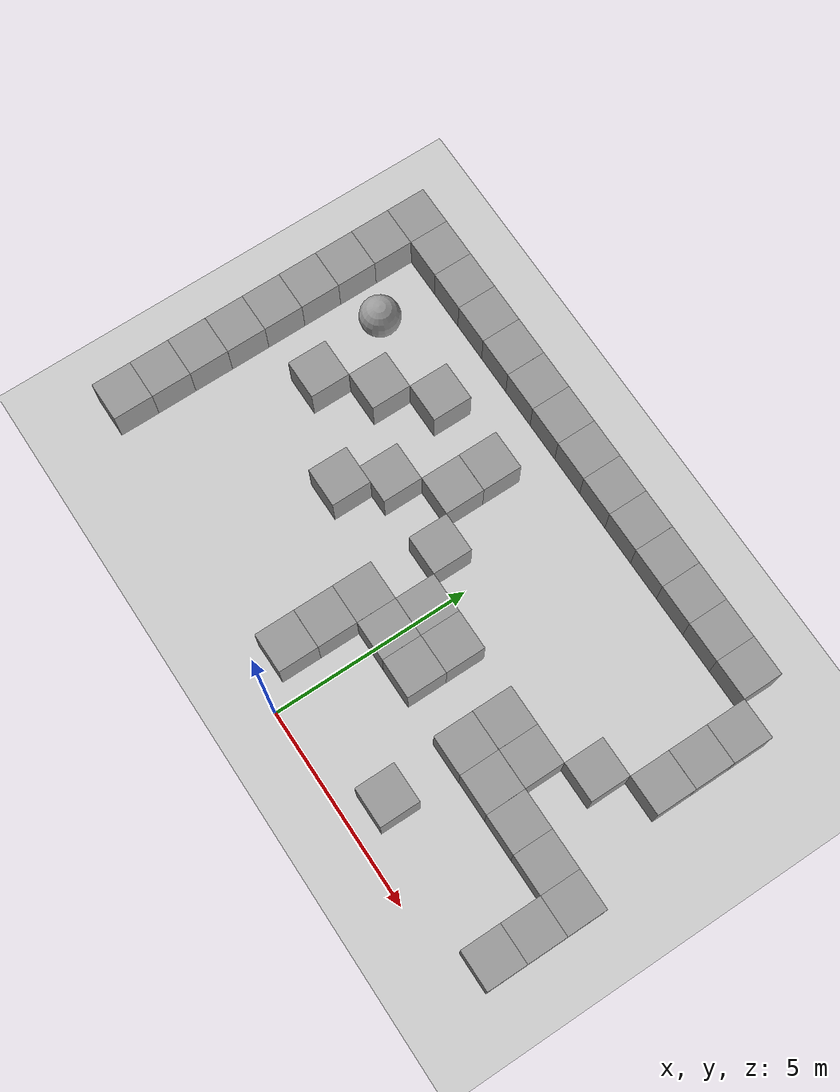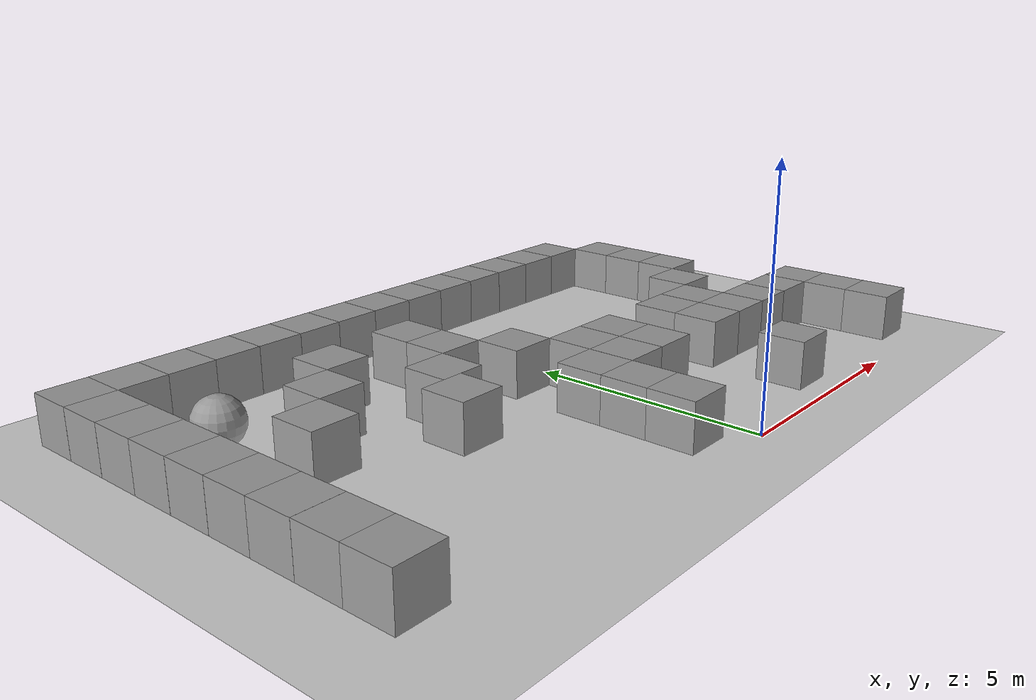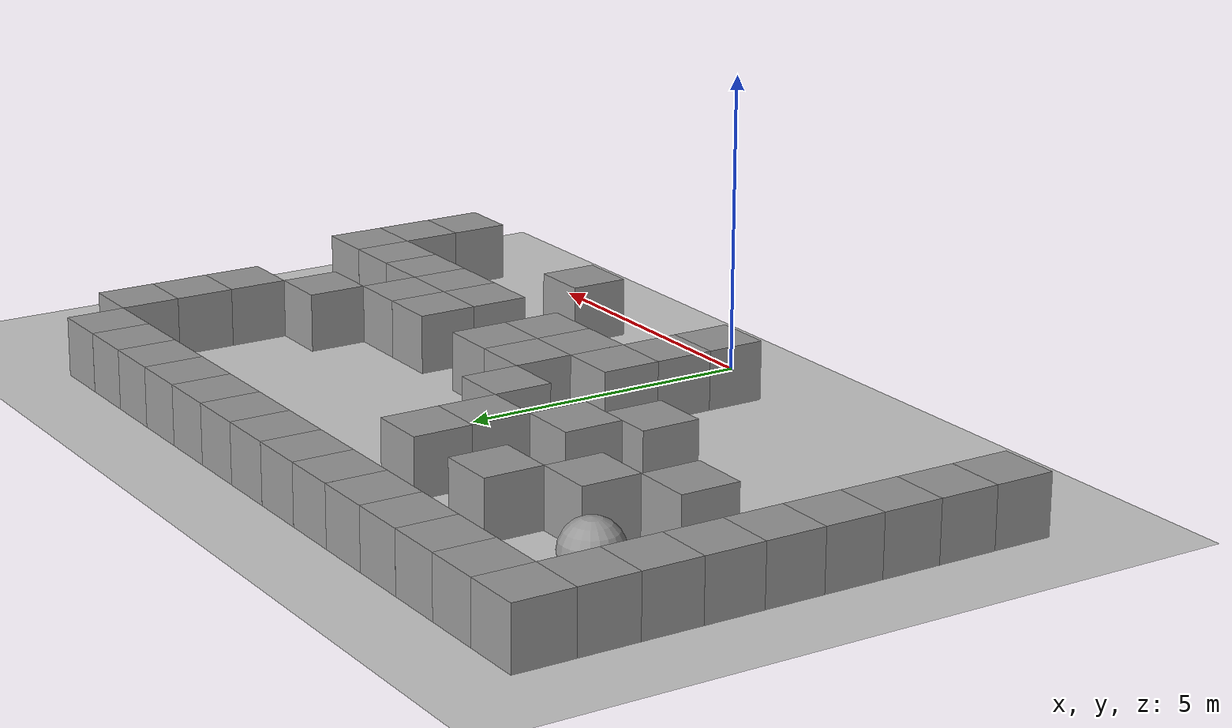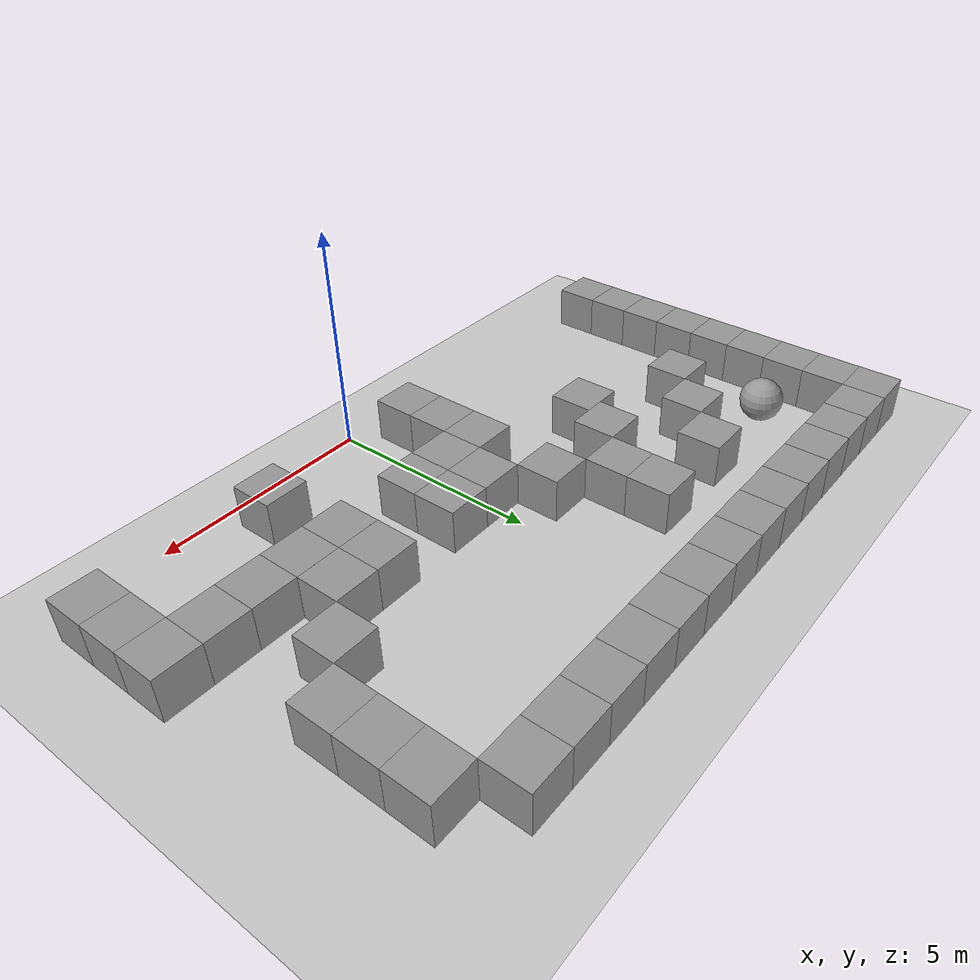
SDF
<sdf version="1.4">
 <world name="default">
  <model name="ground_plane">
   <static>1</static>
   <link name="link">
    <collision name="collision">
     <geometry><plane><normal>0 0 1</normal><size>100 100</size></plane></geometry>
     <surface><friction><ode><mu>100</mu><mu2>50</mu2></ode></friction></surface>
    </collision>
    <visual name="visual">
     <cast_shadows>0</cast_shadows>
     <geometry><plane><normal>0 0 1</normal><size>100 100</size></plane></geometry>
     <material>
      <script><uri>file://media/materials/scripts/gazebo.material</uri><name>Gazebo/Grey</name></script>
     </material>
    </visual>
    <velocity_decay><linear>0</linear><angular>0</angular></velocity_decay>
   </link>
  </model>
  <model name="unit_box_6">
   <pose>3.00003 1.00015 0.5 -0 -0 -5e-06</pose>
   <link name="link">
    <inertial>
     <mass>1</mass>
     <inertia><ixx>1</ixx><ixy>0</ixy><ixz>0</ixz><iyy>1</iyy><iyz>0</iyz><izz>1</izz></inertia>
    </inertial>
    <collision name="collision"><geometry><box><size>1 1 1</size></box></geometry></collision>
    <visual name="visual">
     <geometry><box><size>1 1 1</size></box></geometry>
     <material>
      <script><uri>file://media/materials/scripts/gazebo.material</uri><name>Gazebo/Grey</name></script>
     </material>
    </visual>
    <velocity_decay><linear>0</linear><angular>0</angular></velocity_decay>
   </link>
   <static>0</static>
  </model>
  <model name="unit_box_7">
   <pose>2.9998 2.99992 0.5 0 -0 -0.000142</pose>
   <link name="link">
    <inertial>
     <mass>1</mass>
     <inertia><ixx>1</ixx><ixy>0</ixy><ixz>0</ixz><iyy>1</iyy><iyz>0</iyz><izz>1</izz></inertia>
    </inertial>
    <collision name="collision"><geometry><box><size>1 1 1</size></box></geometry></collision>
    <visual name="visual">
     <geometry><box><size>1 1 1</size></box></geometry>
     <material>
      <script><uri>file://media/materials/scripts/gazebo.material</uri><name>Gazebo/Grey</name></script>
     </material>
    </visual>
    <velocity_decay><linear>0</linear><angular>0</angular></velocity_decay>
   </link>
   <static>0</static>
  </model>
  <model name="unit_box_8">
   <pose>3.99988 3.00001 0.5 0 0 -0.000169</pose>
   <link name="link">
    <inertial>
     <mass>1</mass>
     <inertia><ixx>1</ixx><ixy>0</ixy><ixz>0</ixz><iyy>1</iyy><iyz>0</iyz><izz>1</izz></inertia>
    </inertial>
    <collision name="collision"><geometry><box><size>1 1 1</size></box></geometry></collision>
    <visual name="visual">
     <geometry><box><size>1 1 1</size></box></geometry>
     <material>
      <script><uri>file://media/materials/scripts/gazebo.material</uri><name>Gazebo/Grey</name></script>
     </material>
    </visual>
    <velocity_decay><linear>0</linear><angular>0</angular></velocity_decay>
   </link>
   <static>0</static>
  </model>
  <model name="unit_box_9">
   <pose>4.99997 3.00003 0.5 0 0 -0.000221</pose>
   <link name="link">
    <inertial>
     <mass>1</mass>
     <inertia><ixx>1</ixx><ixy>0</ixy><ixz>0</ixz><iyy>1</iyy><iyz>0</iyz><izz>1</izz></inertia>
    </inertial>
    <collision name="collision"><geometry><box><size>1 1 1</size></box></geometry></collision>
    <visual name="visual">
     <geometry><box><size>1 1 1</size></box></geometry>
     <material>
      <script><uri>file://media/materials/scripts/gazebo.material</uri><name>Gazebo/Grey</name></script>
     </material>
    </visual>
    <velocity_decay><linear>0</linear><angular>0</angular></velocity_decay>
   </link>
   <static>0</static>
  </model>
  <model name="unit_box_10">
   <pose>6.0002 2.99992 0.5 0 0 -0.000145</pose>
   <link name="link">
    <inertial>
     <mass>1</mass>
     <inertia><ixx>1</ixx><ixy>0</ixy><ixz>0</ixz><iyy>1</iyy><iyz>0</iyz><izz>1</izz></inertia>
    </inertial>
    <collision name="collision"><geometry><box><size>1 1 1</size></box></geometry></collision>
    <visual name="visual">
     <geometry><box><size>1 1 1</size></box></geometry>
     <material>
      <script><uri>file://media/materials/scripts/gazebo.material</uri><name>Gazebo/Grey</name></script>
     </material>
    </visual>
    <velocity_decay><linear>0</linear><angular>0</angular></velocity_decay>
   </link>
   <static>0</static>
  </model>
  <model name="unit_box_11">
   <pose>7.00028 3.00032 0.5 -0 -0 -2.6e-05</pose>
   <link name="link">
    <inertial>
     <mass>1</mass>
     <inertia><ixx>1</ixx><ixy>0</ixy><ixz>0</ixz><iyy>1</iyy><iyz>0</iyz><izz>1</izz></inertia>
    </inertial>
    <collision name="collision"><geometry><box><size>1 1 1</size></box></geometry></collision>
    <visual name="visual">
     <geometry><box><size>1 1 1</size></box></geometry>
     <material>
      <script><uri>file://media/materials/scripts/gazebo.material</uri><name>Gazebo/Grey</name></script>
     </material>
    </visual>
    <velocity_decay><linear>0</linear><angular>0</angular></velocity_decay>
   </link>
   <static>0</static>
  </model>
  <model name="unit_box_12">
   <pose>7.00019 2.00029 0.5 -0 -0 -7.1e-05</pose>
   <link name="link">
    <inertial>
     <mass>1</mass>
     <inertia><ixx>1</ixx><ixy>0</ixy><ixz>0</ixz><iyy>1</iyy><iyz>0</iyz><izz>1</izz></inertia>
    </inertial>
    <collision name="collision"><geometry><box><size>1 1 1</size></box></geometry></collision>
    <visual name="visual">
     <geometry><box><size>1 1 1</size></box></geometry>
     <material>
      <script><uri>file://media/materials/scripts/gazebo.material</uri><name>Gazebo/Grey</name></script>
     </material>
    </visual>
    <velocity_decay><linear>0</linear><angular>0</angular></velocity_decay>
   </link>
   <static>0</static>
  </model>
  <model name="unit_box_13">
   <pose>6.99999 1.00029 0.5 0 -0 -7.1e-05</pose>
   <link name="link">
    <inertial>
     <mass>1</mass>
     <inertia><ixx>1</ixx><ixy>0</ixy><ixz>0</ixz><iyy>1</iyy><iyz>0</iyz><izz>1</izz></inertia>
    </inertial>
    <collision name="collision"><geometry><box><size>1 1 1</size></box></geometry></collision>
    <visual name="visual">
     <geometry><box><size>1 1 1</size></box></geometry>
     <material>
      <script><uri>file://media/materials/scripts/gazebo.material</uri><name>Gazebo/Grey</name></script>
     </material>
    </visual>
    <velocity_decay><linear>0</linear><angular>0</angular></velocity_decay>
   </link>
   <static>0</static>
  </model>
  <model name="unit_box_18">
   <pose>1.0003 2.99997 0.5 0 -0 6.4e-05</pose>
   <link name="link">
    <inertial>
     <mass>1</mass>
     <inertia><ixx>1</ixx><ixy>0</ixy><ixz>0</ixz><iyy>1</iyy><iyz>0</iyz><izz>1</izz></inertia>
    </inertial>
    <collision name="collision"><geometry><box><size>1 1 1</size></box></geometry></collision>
    <visual name="visual">
     <geometry><box><size>1 1 1</size></box></geometry>
     <material>
      <script><uri>file://media/materials/scripts/gazebo.material</uri><name>Gazebo/Grey</name></script>
     </material>
    </visual>
    <velocity_decay><linear>0</linear><angular>0</angular></velocity_decay>
   </link>
   <static>0</static>
  </model>
  <model name="unit_box_19">
   <pose>9.3e-05 2.99979 0.5 0 -0 0.000304</pose>
   <link name="link">
    <inertial>
     <mass>1</mass>
     <inertia><ixx>1</ixx><ixy>0</ixy><ixz>0</ixz><iyy>1</iyy><iyz>0</iyz><izz>1</izz></inertia>
    </inertial>
    <collision name="collision"><geometry><box><size>1 1 1</size></box></geometry></collision>
    <visual name="visual">
     <geometry><box><size>1 1 1</size></box></geometry>
     <material>
      <script><uri>file://media/materials/scripts/gazebo.material</uri><name>Gazebo/Grey</name></script>
     </material>
    </visual>
    <velocity_decay><linear>0</linear><angular>0</angular></velocity_decay>
   </link>
   <static>0</static>
  </model>
  <model name="unit_box_20">
   <pose>-1.00013 3.00036 0.5 0 0 -3.9e-05</pose>
   <link name="link">
    <inertial>
     <mass>1</mass>
     <inertia><ixx>1</ixx><ixy>0</ixy><ixz>0</ixz><iyy>1</iyy><iyz>0</iyz><izz>1</izz></inertia>
    </inertial>
    <collision name="collision"><geometry><box><size>1 1 1</size></box></geometry></collision>
    <visual name="visual">
     <geometry><box><size>1 1 1</size></box></geometry>
     <material>
      <script><uri>file://media/materials/scripts/gazebo.material</uri><name>Gazebo/Grey</name></script>
     </material>
    </visual>
    <velocity_decay><linear>0</linear><angular>0</angular></velocity_decay>
   </link>
   <static>0</static>
  </model>
  <model name="unit_box_21">
   <pose>-0.999873 2.00036 0.5 -0 -0 -3.9e-05</pose>
   <link name="link">
    <inertial>
     <mass>1</mass>
     <inertia><ixx>1</ixx><ixy>0</ixy><ixz>0</ixz><iyy>1</iyy><iyz>0</iyz><izz>1</izz></inertia>
    </inertial>
    <collision name="collision"><geometry><box><size>1 1 1</size></box></geometry></collision>
    <visual name="visual">
     <geometry><box><size>1 1 1</size></box></geometry>
     <material>
      <script><uri>file://media/materials/scripts/gazebo.material</uri><name>Gazebo/Grey</name></script>
     </material>
    </visual>
    <velocity_decay><linear>0</linear><angular>0</angular></velocity_decay>
   </link>
   <static>0</static>
  </model>
  <model name="unit_box_22">
   <pose>-1.0002 1.00011 0.5 0 0 -4.9e-05</pose>
   <link name="link">
    <inertial>
     <mass>1</mass>
     <inertia><ixx>1</ixx><ixy>0</ixy><ixz>0</ixz><iyy>1</iyy><iyz>0</iyz><izz>1</izz></inertia>
    </inertial>
    <collision name="collision"><geometry><box><size>1 1 1</size></box></geometry></collision>
    <visual name="visual">
     <geometry><box><size>1 1 1</size></box></geometry>
     <material>
      <script><uri>file://media/materials/scripts/gazebo.material</uri><name>Gazebo/Grey</name></script>
     </material>
    </visual>
    <velocity_decay><linear>0</linear><angular>0</angular></velocity_decay>
   </link>
   <static>0</static>
  </model>
  <model name="unit_box_25">
   <pose>3.0001 4.00019 0.5 -0 -0 -0.000128</pose>
   <link name="link">
    <inertial>
     <mass>1</mass>
     <inertia><ixx>1</ixx><ixy>0</ixy><ixz>0</ixz><iyy>1</iyy><iyz>0</iyz><izz>1</izz></inertia>
    </inertial>
    <collision name="collision"><geometry><box><size>1 1 1</size></box></geometry></collision>
    <visual name="visual">
     <geometry><box><size>1 1 1</size></box></geometry>
     <material>
      <script><uri>file://media/materials/scripts/gazebo.material</uri><name>Gazebo/Grey</name></script>
     </material>
    </visual>
    <velocity_decay><linear>0</linear><angular>0</angular></velocity_decay>
   </link>
   <static>0</static>
  </model>
  <model name="unit_box_26">
   <pose>1.0001 4.00007 0.5 0 0 -4e-06</pose>
   <link name="link">
    <inertial>
     <mass>1</mass>
     <inertia><ixx>1</ixx><ixy>0</ixy><ixz>0</ixz><iyy>1</iyy><iyz>0</iyz><izz>1</izz></inertia>
    </inertial>
    <collision name="collision"><geometry><box><size>1 1 1</size></box></geometry></collision>
    <visual name="visual">
     <geometry><box><size>1 1 1</size></box></geometry>
     <material>
      <script><uri>file://media/materials/scripts/gazebo.material</uri><name>Gazebo/Grey</name></script>
     </material>
    </visual>
    <velocity_decay><linear>0</linear><angular>0</angular></velocity_decay>
   </link>
   <static>0</static>
  </model>
  <model name="unit_box_27">
   <pose>9e-05 3.99999 0.5 0 0 -1.8e-05</pose>
   <link name="link">
    <inertial>
     <mass>1</mass>
     <inertia><ixx>1</ixx><ixy>0</ixy><ixz>0</ixz><iyy>1</iyy><iyz>0</iyz><izz>1</izz></inertia>
    </inertial>
    <collision name="collision"><geometry><box><size>1 1 1</size></box></geometry></collision>
    <visual name="visual">
     <geometry><box><size>1 1 1</size></box></geometry>
     <material>
      <script><uri>file://media/materials/scripts/gazebo.material</uri><name>Gazebo/Grey</name></script>
     </material>
    </visual>
    <velocity_decay><linear>0</linear><angular>0</angular></velocity_decay>
   </link>
   <static>0</static>
  </model>
  <model name="unit_box_28">
   <pose>4.00013 4.00021 0.5 0 -0 -0.000179</pose>
   <link name="link">
    <inertial>
     <mass>1</mass>
     <inertia><ixx>1</ixx><ixy>0</ixy><ixz>0</ixz><iyy>1</iyy><iyz>0</iyz><izz>1</izz></inertia>
    </inertial>
    <collision name="collision"><geometry><box><size>1 1 1</size></box></geometry></collision>
    <visual name="visual">
     <geometry><box><size>1 1 1</size></box></geometry>
     <material>
      <script><uri>file://media/materials/scripts/gazebo.material</uri><name>Gazebo/Grey</name></script>
     </material>
    </visual>
    <velocity_decay><linear>0</linear><angular>0</angular></velocity_decay>
   </link>
   <static>0</static>
  </model>
  <model name="unit_box_29">
   <pose>-0.999949 5 0.5 -0 -0 -4.5e-05</pose>
   <link name="link">
    <inertial>
     <mass>1</mass>
     <inertia><ixx>1</ixx><ixy>0</ixy><ixz>0</ixz><iyy>1</iyy><iyz>0</iyz><izz>1</izz></inertia>
    </inertial>
    <collision name="collision"><geometry><box><size>1 1 1</size></box></geometry></collision>
    <visual name="visual">
     <geometry><box><size>1 1 1</size></box></geometry>
     <material>
      <script><uri>file://media/materials/scripts/gazebo.material</uri><name>Gazebo/Grey</name></script>
     </material>
    </visual>
    <velocity_decay><linear>0</linear><angular>0</angular></velocity_decay>
   </link>
   <static>0</static>
  </model>
  <model name="unit_box_30">
   <pose>-1.99991 5.99986 0.5 0 -0 -7.7e-05</pose>
   <link name="link">
    <inertial>
     <mass>1</mass>
     <inertia><ixx>1</ixx><ixy>0</ixy><ixz>0</ixz><iyy>1</iyy><iyz>0</iyz><izz>1</izz></inertia>
    </inertial>
    <collision name="collision"><geometry><box><size>1 1 1</size></box></geometry></collision>
    <visual name="visual">
     <geometry><box><size>1 1 1</size></box></geometry>
     <material>
      <script><uri>file://media/materials/scripts/gazebo.material</uri><name>Gazebo/Grey</name></script>
     </material>
    </visual>
    <velocity_decay><linear>0</linear><angular>0</angular></velocity_decay>
   </link>
   <static>0</static>
  </model>
  <model name="unit_box_31">
   <pose>4.9999 5.00006 0.5 -0 -0 -0.000173</pose>
   <link name="link">
    <inertial>
     <mass>1</mass>
     <inertia><ixx>1</ixx><ixy>0</ixy><ixz>0</ixz><iyy>1</iyy><iyz>0</iyz><izz>1</izz></inertia>
    </inertial>
    <collision name="collision"><geometry><box><size>1 1 1</size></box></geometry></collision>
    <visual name="visual">
     <geometry><box><size>1 1 1</size></box></geometry>
     <material>
      <script><uri>file://media/materials/scripts/gazebo.material</uri><name>Gazebo/Grey</name></script>
     </material>
    </visual>
    <velocity_decay><linear>0</linear><angular>0</angular></velocity_decay>
   </link>
   <static>0</static>
  </model>
  <model name="unit_box_32">
   <pose>6.00008 5.99998 0.5 0 -0 -9.2e-05</pose>
   <link name="link">
    <inertial>
     <mass>1</mass>
     <inertia><ixx>1</ixx><ixy>0</ixy><ixz>0</ixz><iyy>1</iyy><iyz>0</iyz><izz>1</izz></inertia>
    </inertial>
    <collision name="collision"><geometry><box><size>1 1 1</size></box></geometry></collision>
    <visual name="visual">
     <geometry><box><size>1 1 1</size></box></geometry>
     <material>
      <script><uri>file://media/materials/scripts/gazebo.material</uri><name>Gazebo/Grey</name></script>
     </material>
    </visual>
    <velocity_decay><linear>0</linear><angular>0</angular></velocity_decay>
   </link>
   <static>0</static>
  </model>
  <model name="unit_box_33">
   <pose>-2.00009 6.9999 0.5 0 0 -8.1e-05</pose>
   <link name="link">
    <inertial>
     <mass>1</mass>
     <inertia><ixx>1</ixx><ixy>0</ixy><ixz>0</ixz><iyy>1</iyy><iyz>0</iyz><izz>1</izz></inertia>
    </inertial>
    <collision name="collision"><geometry><box><size>1 1 1</size></box></geometry></collision>
    <visual name="visual">
     <geometry><box><size>1 1 1</size></box></geometry>
     <material>
      <script><uri>file://media/materials/scripts/gazebo.material</uri><name>Gazebo/Grey</name></script>
     </material>
    </visual>
    <velocity_decay><linear>0</linear><angular>0</angular></velocity_decay>
   </link>
   <static>0</static>
  </model>
  <model name="unit_box_34">
   <pose>6.00004 7.00005 0.5 0 0 -0.000127</pose>
   <link name="link">
    <inertial>
     <mass>1</mass>
     <inertia><ixx>1</ixx><ixy>0</ixy><ixz>0</ixz><iyy>1</iyy><iyz>0</iyz><izz>1</izz></inertia>
    </inertial>
    <collision name="collision"><geometry><box><size>1 1 1</size></box></geometry></collision>
    <visual name="visual">
     <geometry><box><size>1 1 1</size></box></geometry>
     <material>
      <script><uri>file://media/materials/scripts/gazebo.material</uri><name>Gazebo/Grey</name></script>
     </material>
    </visual>
    <velocity_decay><linear>0</linear><angular>0</angular></velocity_decay>
   </link>
   <static>0</static>
  </model>
  <model name="unit_box_35">
   <pose>5.99975 8.00005 0.5 -0 -0 -0.000127</pose>
   <link name="link">
    <inertial>
     <mass>1</mass>
     <inertia><ixx>1</ixx><ixy>0</ixy><ixz>0</ixz><iyy>1</iyy><iyz>0</iyz><izz>1</izz></inertia>
    </inertial>
    <collision name="collision"><geometry><box><size>1 1 1</size></box></geometry></collision>
    <visual name="visual">
     <geometry><box><size>1 1 1</size></box></geometry>
     <material>
      <script><uri>file://media/materials/scripts/gazebo.material</uri><name>Gazebo/Grey</name></script>
     </material>
    </visual>
    <velocity_decay><linear>0</linear><angular>0</angular></velocity_decay>
   </link>
   <static>0</static>
  </model>
  <model name="unit_box_36">
   <pose>5.00047 9.00015 0.5 0 0 -4.7e-05</pose>
   <link name="link">
    <inertial>
     <mass>1</mass>
     <inertia><ixx>1</ixx><ixy>0</ixy><ixz>0</ixz><iyy>1</iyy><iyz>0</iyz><izz>1</izz></inertia>
    </inertial>
    <collision name="collision"><geometry><box><size>1 1 1</size></box></geometry></collision>
    <visual name="visual">
     <geometry><box><size>1 1 1</size></box></geometry>
     <material>
      <script><uri>file://media/materials/scripts/gazebo.material</uri><name>Gazebo/Grey</name></script>
     </material>
    </visual>
    <velocity_decay><linear>0</linear><angular>0</angular></velocity_decay>
   </link>
   <static>0</static>
  </model>
  <model name="unit_box_38">
   <pose>-0.999758 9.00014 0.5 0 -0 0.000102</pose>
   <link name="link">
    <inertial>
     <mass>1</mass>
     <inertia><ixx>1</ixx><ixy>0</ixy><ixz>0</ixz><iyy>1</iyy><iyz>0</iyz><izz>1</izz></inertia>
    </inertial>
    <collision name="collision"><geometry><box><size>1 1 1</size></box></geometry></collision>
    <visual name="visual">
     <geometry><box><size>1 1 1</size></box></geometry>
     <material>
      <script><uri>file://media/materials/scripts/gazebo.material</uri><name>Gazebo/Grey</name></script>
     </material>
    </visual>
    <velocity_decay><linear>0</linear><angular>0</angular></velocity_decay>
   </link>
   <static>0</static>
  </model>
  <model name="unit_box_39">
   <pose>4.00046 8.99947 0.5 0 -0 -3.5e-05</pose>
   <link name="link">
    <inertial>
     <mass>1</mass>
     <inertia><ixx>1</ixx><ixy>0</ixy><ixz>0</ixz><iyy>1</iyy><iyz>0</iyz><izz>1</izz></inertia>
    </inertial>
    <collision name="collision"><geometry><box><size>1 1 1</size></box></geometry></collision>
    <visual name="visual">
     <geometry><box><size>1 1 1</size></box></geometry>
     <material>
      <script><uri>file://media/materials/scripts/gazebo.material</uri><name>Gazebo/Grey</name></script>
     </material>
    </visual>
    <velocity_decay><linear>0</linear><angular>0</angular></velocity_decay>
   </link>
   <static>0</static>
  </model>
  <model name="unit_box_40">
   <pose>3.00045 8.99951 0.5 0 0 -5.6e-05</pose>
   <link name="link">
    <inertial>
     <mass>1</mass>
     <inertia><ixx>1</ixx><ixy>0</ixy><ixz>0</ixz><iyy>1</iyy><iyz>0</iyz><izz>1</izz></inertia>
    </inertial>
    <collision name="collision"><geometry><box><size>1 1 1</size></box></geometry></collision>
    <visual name="visual">
     <geometry><box><size>1 1 1</size></box></geometry>
     <material>
      <script><uri>file://media/materials/scripts/gazebo.material</uri><name>Gazebo/Grey</name></script>
     </material>
    </visual>
    <velocity_decay><linear>0</linear><angular>0</angular></velocity_decay>
   </link>
   <static>0</static>
  </model>
  <model name="unit_box_41">
   <pose>2.00028 8.9998 0.5 0 -0 3.1e-05</pose>
   <link name="link">
    <inertial>
     <mass>1</mass>
     <inertia><ixx>1</ixx><ixy>0</ixy><ixz>0</ixz><iyy>1</iyy><iyz>0</iyz><izz>1</izz></inertia>
    </inertial>
    <collision name="collision"><geometry><box><size>1 1 1</size></box></geometry></collision>
    <visual name="visual">
     <geometry><box><size>1 1 1</size></box></geometry>
     <material>
      <script><uri>file://media/materials/scripts/gazebo.material</uri><name>Gazebo/Grey</name></script>
     </material>
    </visual>
    <velocity_decay><linear>0</linear><angular>0</angular></velocity_decay>
   </link>
   <static>0</static>
  </model>
  <model name="unit_box_42">
   <pose>0.000249 8.99966 0.5 0 -0 9.7e-05</pose>
   <link name="link">
    <inertial>
     <mass>1</mass>
     <inertia><ixx>1</ixx><ixy>0</ixy><ixz>0</ixz><iyy>1</iyy><iyz>0</iyz><izz>1</izz></inertia>
    </inertial>
    <collision name="collision"><geometry><box><size>1 1 1</size></box></geometry></collision>
    <visual name="visual">
     <geometry><box><size>1 1 1</size></box></geometry>
     <material>
      <script><uri>file://media/materials/scripts/gazebo.material</uri><name>Gazebo/Grey</name></script>
     </material>
    </visual>
    <velocity_decay><linear>0</linear><angular>0</angular></velocity_decay>
   </link>
   <static>0</static>
  </model>
  <model name="unit_box_43">
   <pose>1.00025 8.99995 0.5 0 -0 9.7e-05</pose>
   <link name="link">
    <inertial>
     <mass>1</mass>
     <inertia><ixx>1</ixx><ixy>0</ixy><ixz>0</ixz><iyy>1</iyy><iyz>0</iyz><izz>1</izz></inertia>
    </inertial>
    <collision name="collision"><geometry><box><size>1 1 1</size></box></geometry></collision>
    <visual name="visual">
     <geometry><box><size>1 1 1</size></box></geometry>
     <material>
      <script><uri>file://media/materials/scripts/gazebo.material</uri><name>Gazebo/Grey</name></script>
     </material>
    </visual>
    <velocity_decay><linear>0</linear><angular>0</angular></velocity_decay>
   </link>
   <static>0</static>
  </model>
  <model name="unit_box_92">
   <pose>-7.99937 1.00027 0.5 -0 -0 -0.000202</pose>
   <link name="link">
    <inertial>
     <mass>1</mass>
     <inertia><ixx>1</ixx><ixy>0</ixy><ixz>0</ixz><iyy>1</iyy><iyz>0</iyz><izz>1</izz></inertia>
    </inertial>
    <collision name="collision"><geometry><box><size>1 1 1</size></box></geometry></collision>
    <visual name="visual">
     <geometry><box><size>1 1 1</size></box></geometry>
     <material>
      <script><uri>file://media/materials/scripts/gazebo.material</uri><name>Gazebo/Grey</name></script>
     </material>
    </visual>
    <velocity_decay><linear>0</linear><angular>0</angular></velocity_decay>
   </link>
   <static>0</static>
  </model>
  <model name="unit_box_93">
   <pose>-7.99897 2.00027 0.49912 0 -0 -0.000202</pose>
   <link name="link">
    <inertial>
     <mass>1</mass>
     <inertia><ixx>1</ixx><ixy>0</ixy><ixz>0</ixz><iyy>1</iyy><iyz>0</iyz><izz>1</izz></inertia>
    </inertial>
    <collision name="collision"><geometry><box><size>1 1 1</size></box></geometry></collision>
    <visual name="visual">
     <geometry><box><size>1 1 1</size></box></geometry>
     <material>
      <script><uri>file://media/materials/scripts/gazebo.material</uri><name>Gazebo/Grey</name></script>
     </material>
    </visual>
    <velocity_decay><linear>0</linear><angular>0</angular></velocity_decay>
   </link>
   <static>0</static>
  </model>
  <model name="unit_box_94">
   <pose>-7.99959 3.0003 0.5 0 0 -0.000261</pose>
   <link name="link">
    <inertial>
     <mass>1</mass>
     <inertia><ixx>1</ixx><ixy>0</ixy><ixz>0</ixz><iyy>1</iyy><iyz>0</iyz><izz>1</izz></inertia>
    </inertial>
    <collision name="collision"><geometry><box><size>1 1 1</size></box></geometry></collision>
    <visual name="visual">
     <geometry><box><size>1 1 1</size></box></geometry>
     <material>
      <script><uri>file://media/materials/scripts/gazebo.material</uri><name>Gazebo/Grey</name></script>
     </material>
    </visual>
    <velocity_decay><linear>0</linear><angular>0</angular></velocity_decay>
   </link>
   <static>0</static>
  </model>
  <model name="unit_box_95">
   <pose>-7.99915 4.00037 0.5 0 0 -0.000284</pose>
   <link name="link">
    <inertial>
     <mass>1</mass>
     <inertia><ixx>1</ixx><ixy>0</ixy><ixz>0</ixz><iyy>1</iyy><iyz>0</iyz><izz>1</izz></inertia>
    </inertial>
    <collision name="collision"><geometry><box><size>1 1 1</size></box></geometry></collision>
    <visual name="visual">
     <geometry><box><size>1 1 1</size></box></geometry>
     <material>
      <script><uri>file://media/materials/scripts/gazebo.material</uri><name>Gazebo/Grey</name></script>
     </material>
    </visual>
    <velocity_decay><linear>0</linear><angular>0</angular></velocity_decay>
   </link>
   <static>0</static>
  </model>
  <model name="unit_box_96">
   <pose>-1.99987 8.99996 0.5 0 0 -8.1e-05</pose>
   <link name="link">
    <inertial>
     <mass>1</mass>
     <inertia><ixx>1</ixx><ixy>0</ixy><ixz>0</ixz><iyy>1</iyy><iyz>0</iyz><izz>1</izz></inertia>
    </inertial>
    <collision name="collision"><geometry><box><size>1 1 1</size></box></geometry></collision>
    <visual name="visual">
     <geometry><box><size>1 1 1</size></box></geometry>
     <material>
      <script><uri>file://media/materials/scripts/gazebo.material</uri><name>Gazebo/Grey</name></script>
     </material>
    </visual>
    <velocity_decay><linear>0</linear><angular>0</angular></velocity_decay>
   </link>
   <static>0</static>
  </model>
  <model name="unit_box_97">
   <pose>-2.9999 8.99986 0.5 0 0 -2.9e-05</pose>
   <link name="link">
    <inertial>
     <mass>1</mass>
     <inertia><ixx>1</ixx><ixy>0</ixy><ixz>0</ixz><iyy>1</iyy><iyz>0</iyz><izz>1</izz></inertia>
    </inertial>
    <collision name="collision"><geometry><box><size>1 1 1</size></box></geometry></collision>
    <visual name="visual">
     <geometry><box><size>1 1 1</size></box></geometry>
     <material>
      <script><uri>file://media/materials/scripts/gazebo.material</uri><name>Gazebo/Grey</name></script>
     </material>
    </visual>
    <velocity_decay><linear>0</linear><angular>0</angular></velocity_decay>
   </link>
   <static>0</static>
  </model>
  <model name="unit_box_98">
   <pose>-4.0003 9.00035 0.5 0 0 -0.00027</pose>
   <link name="link">
    <inertial>
     <mass>1</mass>
     <inertia><ixx>1</ixx><ixy>0</ixy><ixz>0</ixz><iyy>1</iyy><iyz>0</iyz><izz>1</izz></inertia>
    </inertial>
    <collision name="collision"><geometry><box><size>1 1 1</size></box></geometry></collision>
    <visual name="visual">
     <geometry><box><size>1 1 1</size></box></geometry>
     <material>
      <script><uri>file://media/materials/scripts/gazebo.material</uri><name>Gazebo/Grey</name></script>
     </material>
    </visual>
    <velocity_decay><linear>0</linear><angular>0</angular></velocity_decay>
   </link>
   <static>0</static>
  </model>
  <model name="unit_box_99">
   <pose>-3 5 0.5 0 -0 0</pose>
   <link name="link">
    <inertial>
     <mass>1</mass>
     <inertia><ixx>1</ixx><ixy>0</ixy><ixz>0</ixz><iyy>1</iyy><iyz>0</iyz><izz>1</izz></inertia>
    </inertial>
    <collision name="collision"><geometry><box><size>1 1 1</size></box></geometry></collision>
    <visual name="visual">
     <geometry><box><size>1 1 1</size></box></geometry>
     <material>
      <script><uri>file://media/materials/scripts/gazebo.material</uri><name>Gazebo/Grey</name></script>
     </material>
    </visual>
    <velocity_decay><linear>0</linear><angular>0</angular></velocity_decay>
   </link>
   <static>0</static>
  </model>
  <model name="unit_box_100">
   <pose>-3.55322 4 0.5 0 -0 0</pose>
   <link name="link">
    <inertial>
     <mass>1</mass>
     <inertia><ixx>1</ixx><ixy>0</ixy><ixz>0</ixz><iyy>1</iyy><iyz>0</iyz><izz>1</izz></inertia>
    </inertial>
    <collision name="collision"><geometry><box><size>1 1 1</size></box></geometry></collision>
    <visual name="visual">
     <geometry><box><size>1 1 1</size></box></geometry>
     <material>
      <script><uri>file://media/materials/scripts/gazebo.material</uri><name>Gazebo/Grey</name></script>
     </material>
    </visual>
    <velocity_decay><linear>0</linear><angular>0</angular></velocity_decay>
   </link>
   <static>0</static>
  </model>
  <model name="unit_box_101">
   <pose>-5.00037 9.00087 0.5 0 -0 -0.000123</pose>
   <link name="link">
    <inertial>
     <mass>1</mass>
     <inertia><ixx>1</ixx><ixy>0</ixy><ixz>0</ixz><iyy>1</iyy><iyz>0</iyz><izz>1</izz></inertia>
    </inertial>
    <collision name="collision"><geometry><box><size>1 1 1</size></box></geometry></collision>
    <visual name="visual">
     <geometry><box><size>1 1 1</size></box></geometry>
     <material>
      <script><uri>file://media/materials/scripts/gazebo.material</uri><name>Gazebo/Grey</name></script>
     </material>
    </visual>
    <velocity_decay><linear>0</linear><angular>0</angular></velocity_decay>
   </link>
   <static>0</static>
  </model>
  <model name="unit_box_102">
   <pose>-6.00043 9.00046 0.5 -0 -0 -0.000123</pose>
   <link name="link">
    <inertial>
     <mass>1</mass>
     <inertia><ixx>1</ixx><ixy>0</ixy><ixz>0</ixz><iyy>1</iyy><iyz>0</iyz><izz>1</izz></inertia>
    </inertial>
    <collision name="collision"><geometry><box><size>1 1 1</size></box></geometry></collision>
    <visual name="visual">
     <geometry><box><size>1 1 1</size></box></geometry>
     <material>
      <script><uri>file://media/materials/scripts/gazebo.material</uri><name>Gazebo/Grey</name></script>
     </material>
    </visual>
    <velocity_decay><linear>0</linear><angular>0</angular></velocity_decay>
   </link>
   <static>0</static>
  </model>
  <model name="unit_box_103">
   <pose>-4 7 0.5 0 -0 0</pose>
   <link name="link">
    <inertial>
     <mass>1</mass>
     <inertia><ixx>1</ixx><ixy>0</ixy><ixz>0</ixz><iyy>1</iyy><iyz>0</iyz><izz>1</izz></inertia>
    </inertial>
    <collision name="collision"><geometry><box><size>1 1 1</size></box></geometry></collision>
    <visual name="visual">
     <geometry><box><size>1 1 1</size></box></geometry>
     <material>
      <script><uri>file://media/materials/scripts/gazebo.material</uri><name>Gazebo/Grey</name></script>
     </material>
    </visual>
    <velocity_decay><linear>0</linear><angular>0</angular></velocity_decay>
   </link>
   <static>0</static>
  </model>
  <model name="unit_box_104">
   <pose>-5 6 0.5 0 -0 0</pose>
   <link name="link">
    <inertial>
     <mass>1</mass>
     <inertia><ixx>1</ixx><ixy>0</ixy><ixz>0</ixz><iyy>1</iyy><iyz>0</iyz><izz>1</izz></inertia>
    </inertial>
    <collision name="collision"><geometry><box><size>1 1 1</size></box></geometry></collision>
    <visual name="visual">
     <geometry><box><size>1 1 1</size></box></geometry>
     <material>
      <script><uri>file://media/materials/scripts/gazebo.material</uri><name>Gazebo/Grey</name></script>
     </material>
    </visual>
    <velocity_decay><linear>0</linear><angular>0</angular></velocity_decay>
   </link>
   <static>0</static>
  </model>
  <model name="unit_box_105">
   <pose>-6 5 0.5 0 -0 0</pose>
   <link name="link">
    <inertial>
     <mass>1</mass>
     <inertia><ixx>1</ixx><ixy>0</ixy><ixz>0</ixz><iyy>1</iyy><iyz>0</iyz><izz>1</izz></inertia>
    </inertial>
    <collision name="collision"><geometry><box><size>1 1 1</size></box></geometry></collision>
    <visual name="visual">
     <geometry><box><size>1 1 1</size></box></geometry>
     <material>
      <script><uri>file://media/materials/scripts/gazebo.material</uri><name>Gazebo/Grey</name></script>
     </material>
    </visual>
    <velocity_decay><linear>0</linear><angular>0</angular></velocity_decay>
   </link>
   <static>0</static>
  </model>
  <model name="unit_box_106">
   <pose>-7.00048 9.00077 0.5 0 -0 -0.000217</pose>
   <link name="link">
    <inertial>
     <mass>1</mass>
     <inertia><ixx>1</ixx><ixy>0</ixy><ixz>0</ixz><iyy>1</iyy><iyz>0</iyz><izz>1</izz></inertia>
    </inertial>
    <collision name="collision"><geometry><box><size>1 1 1</size></box></geometry></collision>
    <visual name="visual">
     <geometry><box><size>1 1 1</size></box></geometry>
     <material>
      <script><uri>file://media/materials/scripts/gazebo.material</uri><name>Gazebo/Grey</name></script>
     </material>
    </visual>
    <velocity_decay><linear>0</linear><angular>0</angular></velocity_decay>
   </link>
   <static>0</static>
  </model>
  <model name="unit_box_107">
   <pose>-8 5.0004 0.5 0 0 -0.000319</pose>
   <link name="link">
    <inertial>
     <mass>1</mass>
     <inertia><ixx>1</ixx><ixy>0</ixy><ixz>0</ixz><iyy>1</iyy><iyz>0</iyz><izz>1</izz></inertia>
    </inertial>
    <collision name="collision"><geometry><box><size>1 1 1</size></box></geometry></collision>
    <visual name="visual">
     <geometry><box><size>1 1 1</size></box></geometry>
     <material>
      <script><uri>file://media/materials/scripts/gazebo.material</uri><name>Gazebo/Grey</name></script>
     </material>
    </visual>
    <velocity_decay><linear>0</linear><angular>0</angular></velocity_decay>
   </link>
   <static>0</static>
  </model>
  <model name="unit_box_108">
   <pose>-8.00107 6.00042 0.5 -0 -0 -0.000365</pose>
   <link name="link">
    <inertial>
     <mass>1</mass>
     <inertia><ixx>1</ixx><ixy>0</ixy><ixz>0</ixz><iyy>1</iyy><iyz>0</iyz><izz>1</izz></inertia>
    </inertial>
    <collision name="collision"><geometry><box><size>1 1 1</size></box></geometry></collision>
    <visual name="visual">
     <geometry><box><size>1 1 1</size></box></geometry>
     <material>
      <script><uri>file://media/materials/scripts/gazebo.material</uri><name>Gazebo/Grey</name></script>
     </material>
    </visual>
    <velocity_decay><linear>0</linear><angular>0</angular></velocity_decay>
   </link>
   <static>0</static>
  </model>
  <model name="unit_box_109">
   <pose>-7.9996 7.00057 0.5 0 0 -0.000169</pose>
   <link name="link">
    <inertial>
     <mass>1</mass>
     <inertia><ixx>1</ixx><ixy>0</ixy><ixz>0</ixz><iyy>1</iyy><iyz>0</iyz><izz>1</izz></inertia>
    </inertial>
    <collision name="collision"><geometry><box><size>1 1 1</size></box></geometry></collision>
    <visual name="visual">
     <geometry><box><size>1 1 1</size></box></geometry>
     <material>
      <script><uri>file://media/materials/scripts/gazebo.material</uri><name>Gazebo/Grey</name></script>
     </material>
    </visual>
    <velocity_decay><linear>0</linear><angular>0</angular></velocity_decay>
   </link>
   <static>0</static>
  </model>
  <model name="unit_box_110">
   <pose>-8.00013 8.00071 0.5 0 -0 -3.2e-05</pose>
   <link name="link">
    <inertial>
     <mass>1</mass>
     <inertia><ixx>1</ixx><ixy>0</ixy><ixz>0</ixz><iyy>1</iyy><iyz>0</iyz><izz>1</izz></inertia>
    </inertial>
    <collision name="collision"><geometry><box><size>1 1 1</size></box></geometry></collision>
    <visual name="visual">
     <geometry><box><size>1 1 1</size></box></geometry>
     <material>
      <script><uri>file://media/materials/scripts/gazebo.material</uri><name>Gazebo/Grey</name></script>
     </material>
    </visual>
    <velocity_decay><linear>0</linear><angular>0</angular></velocity_decay>
   </link>
   <static>0</static>
  </model>
  <model name="unit_box_111">
   <pose>-8.00059 9.00072 0.5 -0 -0 -2.5e-05</pose>
   <link name="link">
    <inertial>
     <mass>1</mass>
     <inertia><ixx>1</ixx><ixy>0</ixy><ixz>0</ixz><iyy>1</iyy><iyz>0</iyz><izz>1</izz></inertia>
    </inertial>
    <collision name="collision"><geometry><box><size>1 1 1</size></box></geometry></collision>
    <visual name="visual">
     <geometry><box><size>1 1 1</size></box></geometry>
     <material>
      <script><uri>file://media/materials/scripts/gazebo.material</uri><name>Gazebo/Grey</name></script>
     </material>
    </visual>
    <velocity_decay><linear>0</linear><angular>0</angular></velocity_decay>
   </link>
   <static>0</static>
  </model>
  <model name="unit_sphere_2">
   <pose>-6.53459 7 0.5 0 -0 0</pose>
   <link name="link">
    <inertial>
     <mass>1</mass>
     <inertia><ixx>1</ixx><ixy>0</ixy><ixz>0</ixz><iyy>1</iyy><iyz>0</iyz><izz>1</izz></inertia>
    </inertial>
    <collision name="collision"><geometry><sphere><radius>0.5</radius></sphere></geometry></collision>
    <visual name="visual">
     <geometry><sphere><radius>0.5</radius></sphere></geometry>
     <material>
      <script><uri>file://media/materials/scripts/gazebo.material</uri><name>Gazebo/Grey</name></script>
     </material>
    </visual>
    <velocity_decay><linear>0</linear><angular>0</angular></velocity_decay>
   </link>
   <static>0</static>
  </model>
 </world>
</sdf>
